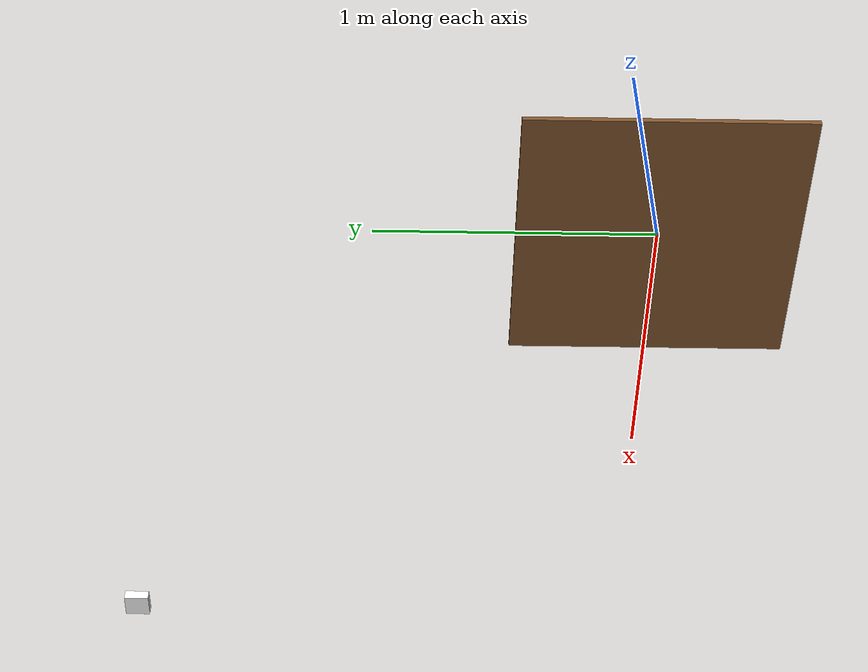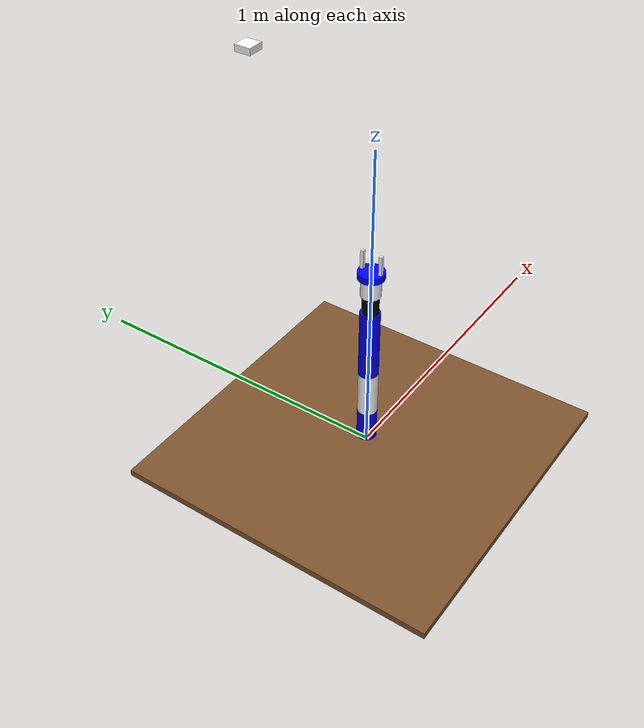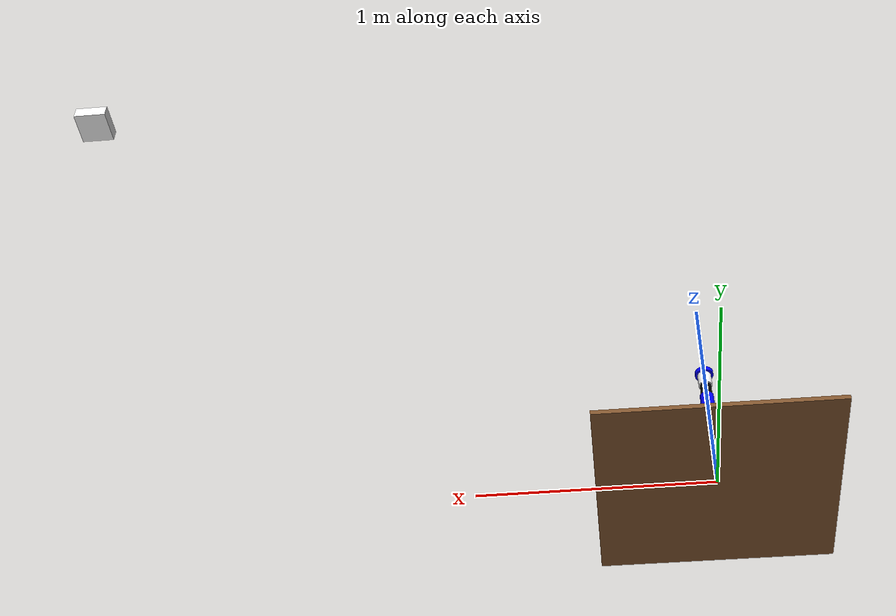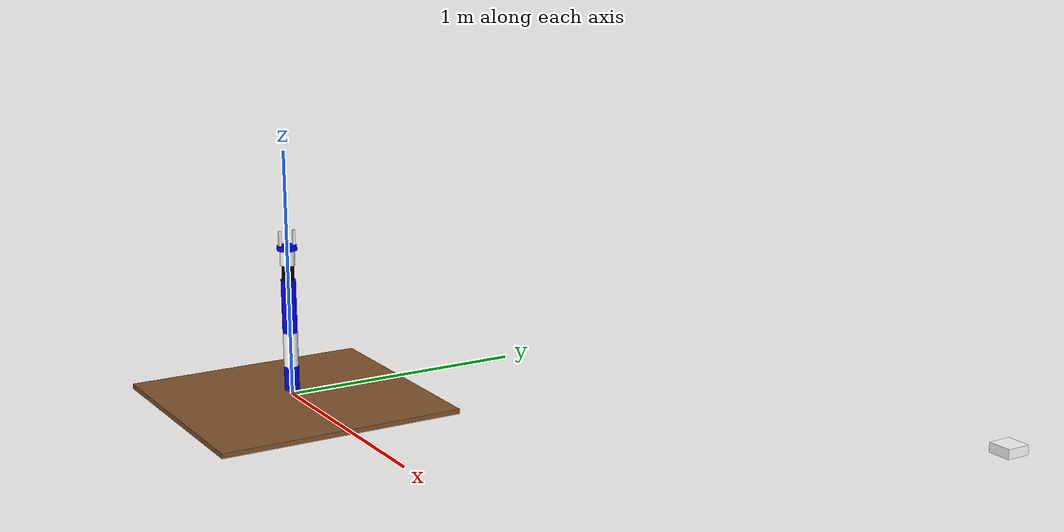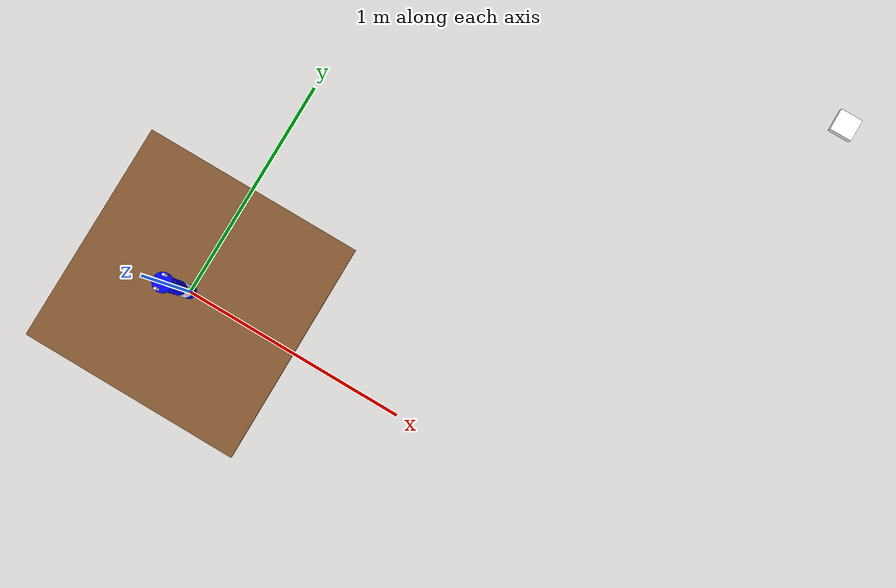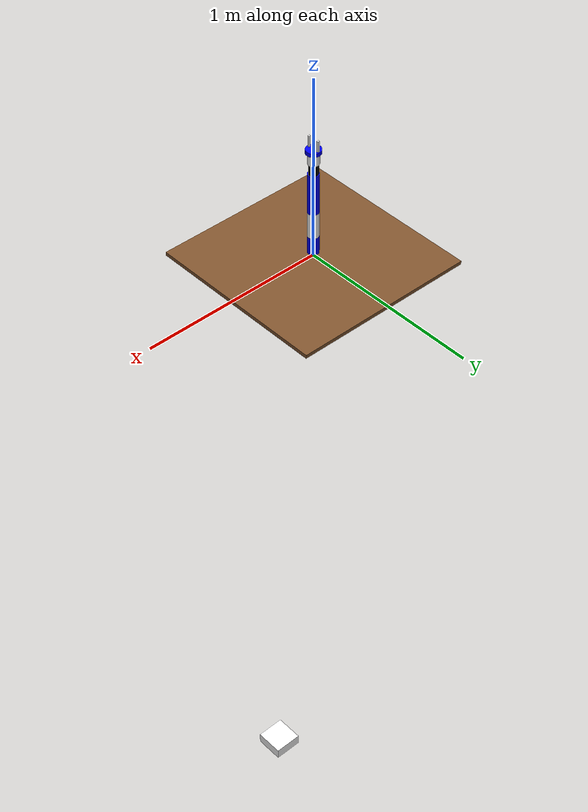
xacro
<?xml version="1.0"?>
<robot name="armb" xmlns:xacro="http://ros.org/wiki/xacro">

    <!-- Defining the colors used in this robot -->
    <material name="Black">
        <color rgba="0 0 0 1"/>
    </material>

    <material name="White">
        <color rgba="1 1 1 1"/>
    </material>

    <material name="Blue">
        <color rgba="0 0 1 1"/>
    </material>

    <material name="Red">
        <color rgba="1 0 0 1"/>
    </material>

    <!-- Constants -->
    <xacro:property name="M_PI" value="3.14159"/>

    <!-- link1 properties -->
    <xacro:property name="link1_width" value="0.03" />
    <xacro:property name="link1_len" value="0.10" />

    <!-- link2 properties -->
    <xacro:property name="link2_width" value="0.03" />
    <xacro:property name="link2_len" value="0.14" />

    <!-- link3 properties -->
    <xacro:property name="link3_width" value="0.03" />
    <xacro:property name="link3_len" value="0.22" />

    <!-- link4 properties -->
    <xacro:property name="link4_width" value="0.025" />
    <xacro:property name="link4_len" value="0.06" />

    <!-- link5 properties -->
    <xacro:property name="link5_width" value="0.03" />
    <xacro:property name="link5_len" value="0.06" />

    <!-- link6 properties -->
    <xacro:property name="link6_width" value="0.04" />
    <xacro:property name="link6_len" value="0.02" />

    <!-- Left gripper -->
    <xacro:property name="left_gripper_len" value="0.08" />
    <xacro:property name="left_gripper_width" value="0.01" />
    <xacro:property name="left_gripper_height" value="0.01" />

    <!-- Right gripper -->
    <xacro:property name="right_gripper_len" value="0.08" />
    <xacro:property name="right_gripper_width" value="0.01" />
    <xacro:property name="right_gripper_height" value="0.01" />

    <!-- Gripper frame -->
    <xacro:property name="grasp_frame_radius" value="0.001" />

    <!-- Inertial matrix -->
    <xacro:macro name="inertial_matrix" params="mass">
        <inertial>
            <mass value="${mass}" />
            <inertia ixx="1.0" ixy="0.0" ixz="0.0" iyy="0.5" iyz="0.0" izz="1.0" />
        </inertial>
    </xacro:macro>

    <!-- ///////////////////////////////////////   bottom_joint   ////////////////////////////////////////// -->
    <joint name="bottom_jointb" type="fixed">
        <origin xyz="0 0 0" rpy="0 0 0" />
        <parent link="base_linkb"/>
        <child link="bottom_linkb"/>
    </joint>
    <link name="bottom_linkb">
        <visual>
              <origin xyz=" 0 0 -0.02"  rpy="0 0 0"/>
                  <geometry>
                       <box size="1 1 0.02" />
                  </geometry>
              <material name="Brown" />
        </visual>
        <collision>
            <origin xyz=" 0 0 -0.02"  rpy="0 0 0"/>
            <geometry>
                <box size="1 1 0.02" />
            </geometry>
        </collision>
        <xacro:inertial_matrix mass="500"/>
    </link>

    <!-- /////////////////////////////////////   BASE LINK    ////////////////////////////////////////////// -->
    <link name="base_linkb">
        <visual>
            <origin xyz="2 2 0" rpy="0 0 0" />
            <geometry>
                <box size="0.1 0.1 0.04" />
            </geometry>
            <material name="White" />
        </visual>
        <collision>
            <origin xyz="0 0 0" rpy="0 0 0" />
            <geometry>
                <box size="0.1 0.1 0.04" />
            </geometry>
        </collision>
        <xacro:inertial_matrix mass="1"/>
    </link>

    <joint name="joint1b" type="revolute">
        <parent link="base_linkb"/>
        <child link="link1b"/>
        <origin xyz="0 0 0.02" rpy="0 ${M_PI/2} 0" />
        <axis xyz="-1 0 0" />
        <limit effort="300" velocity="1" lower="-2.96" upper="2.96"/>
        <dynamics damping="50" friction="1"/>
    </joint>

    <!-- /////////////////////////////////////   LINK1  ////////////////////////////////////////////// -->
    <link name="link1b" >
        <visual>
            <origin xyz="-${link1_len/2} 0 0" rpy="0 ${M_PI/2} 0" />
            <geometry>
                <cylinder radius="${link1_width}" length="${link1_len}"/>
            </geometry>
            <material name="Blue" />
        </visual>
        <collision>
            <origin xyz="-${link1_len/2} 0 0" rpy="0 ${M_PI/2} 0" />
            <geometry>
                <cylinder radius="${link1_width}" length="${link1_len}"/>
            </geometry>
        </collision>
        <xacro:inertial_matrix mass="1"/>
    </link>

    <joint name="joint2b" type="revolute">
        <parent link="link1b"/>
        <child link="link2b"/>
        <origin xyz="-${link1_len} 0 0.0" rpy="-${M_PI/2} 0 ${M_PI/2}" />
        <axis xyz="1 0 0" />
        <limit effort="300" velocity="1" lower="-2.35" upper="2.35" />
        <dynamics damping="50" friction="1"/>
    </joint>

    <!-- ///////////////////////////////////////   LINK2  ////////////////////////////////////////////// -->
    <link name="link2b" >
        <visual>
            <origin xyz="0 0 ${link2_len/2}" rpy="0 0 0" />
            <geometry>
                <cylinder radius="${link2_width}" length="${link2_len}"/>
            </geometry>
            <material name="White" />
        </visual>

        <collision>
            <origin xyz="0 0 ${link2_len/2}" rpy="0 0 0" />
            <geometry>
                <cylinder radius="${link2_width}" length="${link2_len}"/>
            </geometry>
        </collision>
        <xacro:inertial_matrix mass="1"/>
    </link>

    <joint name="joint3b" type="revolute">
        <parent link="link2b"/>
        <child link="link3b"/>
        <origin xyz="0 0 ${link2_len}" rpy="0 ${M_PI} 0" />
        <axis xyz="-1 0 0" />
        <limit effort="300" velocity="1" lower="-2.62" upper="2.62" />
        <dynamics damping="50" friction="1"/>
    </joint>

    <!-- /////////////////////////////////   LINK3  ///////////////////////////////////////////////////// -->
    <link name="link3b" >
        <visual>
            <origin xyz="0 0 -${link3_len/2}" rpy="0 0 0" />
            <geometry>
                <cylinder radius="${link3_width}" length="${link3_len}"/>
            </geometry>
            <material name="Blue" />
        </visual>
        <collision>
            <origin xyz="0 0 -${link3_len/2}" rpy="0 0 0" />
            <geometry>
                <cylinder radius="${link3_width}" length="${link3_len}"/>
            </geometry>
        </collision>
        <xacro:inertial_matrix mass="1"/>
    </link>

    <joint name="joint4b" type="revolute">
        <parent link="link3b"/>
        <child link="link4b"/>
        <origin xyz="0.0 0.0 -${link3_len}" rpy="0 ${M_PI/2} ${M_PI}" />
        <axis xyz="1 0 0" />
        <limit effort="300" velocity="1" lower="-2.62" upper="2.62" />
        <dynamics damping="50" friction="1"/>
    </joint>

    <!-- ///////////////////////////////////   LINK4  //////////////////////////////////////////////// -->
    <link name="link4b" >
        <visual>
            <origin xyz="${link4_len/2} 0 0" rpy="0 ${M_PI/2} 0" />
            <geometry>
                <cylinder radius="${link4_width}" length="${link4_len}"/>
            </geometry>
            <material name="Black" />
        </visual>
        <collision>
            <origin xyz="${link4_len/2} 0 0" rpy="0 ${M_PI/2} 0" />
            <geometry>
                <cylinder radius="${link4_width}" length="${link4_len}"/>
            </geometry>
        </collision>
        <xacro:inertial_matrix mass="1"/>
    </link>

    <joint name="joint5b" type="revolute">
        <parent link="link4b"/>
        <child link="link5b"/>
        <origin xyz="${link4_len} 0.0 0.0" rpy="0 ${M_PI/2} 0" />
        <axis xyz="1 0 0" />
        <limit effort="300" velocity="1" lower="-2.62" upper="2.62" />
        <dynamics damping="50" friction="1"/>
    </joint>

    <!-- //////////////////////////////////   LINK5  ///////////////////////////////////////////////// -->
    <link name="link5b">
        <visual>
            <origin xyz="0 0 ${link4_len/2}" rpy="0 0 0" />
            <geometry>
                <cylinder radius="${link5_width}" length="${link5_len}"/>
            </geometry>
            <material name="White" />
        </visual>
        <collision>
            <origin xyz="0 0 ${link4_len/2} " rpy="0 0 0" />
            <geometry>
                <cylinder radius="${link5_width}" length="${link5_len}"/>
            </geometry>
        </collision>
        <xacro:inertial_matrix mass="1"/>
    </link>

    <joint name="joint6b" type="revolute">
        <parent link="link5b"/>
        <child link="link6b"/>
        <origin xyz="0 0 ${link4_len}" rpy="${1.5*M_PI} -${M_PI/2} 0" />
        <axis xyz="1 0 0" />
        <limit effort="300" velocity="1" lower="-6.28" upper="6.28" />
        <dynamics damping="50" friction="1"/>
    </joint>

    <!-- ////////////////////////////////   LINK6  ///////////////////////////////////////////////// -->
    <link name="link6b">
        <visual>
            <origin xyz="${link6_len/2} 0 0 " rpy="0 ${M_PI/2} 0" />
            <geometry>
                <cylinder radius="${link6_width}" length="${link6_len}"/>
            </geometry>
            <material name="Blue" />
        </visual>
        <collision>
            <origin xyz="${link6_len/2} 0 0" rpy="0 ${M_PI/2} 0" />
            <geometry>
                <cylinder radius="${link6_width}" length="${link6_len}"/>
            </geometry>
        </collision>
        <xacro:inertial_matrix mass="1"/>
    </link>

    <joint name="finger_joint1b" type="prismatic">
        <parent link="link6b"/>
        <child link="gripper_finger_link1b"/>
        <origin xyz="0.0 0 0" />
        <axis xyz="0 1 0" />
        <limit effort="100" lower="0" upper="0.06" velocity="1.0"/>
        <dynamics damping="50" friction="1"/>
    </joint>

    <!-- //////////////////////////////////////   gripper   ////////////////////////////////////////////// -->
    <!-- LEFT GRIPPER AFT LINK -->
    <link name="gripper_finger_link1b">
        <visual>
            <origin xyz="0.04 -0.03 0"/>
            <geometry>
                <box size="${left_gripper_len} ${left_gripper_width} ${left_gripper_height}" />
            </geometry>
            <material name="White" />
        </visual>
        <xacro:inertial_matrix mass="1"/>
    </link>

    <joint name="finger_joint2b" type="fixed">
        <parent link="link6b"/>
        <child link="gripper_finger_link2b"/>
        <origin xyz="0.0 0 0" />
    </joint>

    <!-- RIGHT GRIPPER AFT LINK -->
    <link name="gripper_finger_link2b">
        <visual>
            <origin xyz="0.04 0.03 0"/>
            <geometry>
                <box size="${right_gripper_len} ${right_gripper_width} ${right_gripper_height}" />
            </geometry>
            <material name="White" />
        </visual>
        <xacro:inertial_matrix mass="1"/>
    </link>

    <!-- Grasping frame -->
    <link name="grasping_frameb"/>

    <joint name="grasping_frame_jointb" type="fixed">
      <parent link="link6b"/>
      <child link="grasping_frameb"/>
      <origin xyz="0.08 0 0" rpy="0 0 0"/>
    </joint>

    <!-- /////////////////////////////////   Gazebo   ////////////////////////////////////// -->
    <gazebo reference="bottom_linkb">
        <material>Gazebo/White</material>
    </gazebo>
    <gazebo reference="base_linkb">
        <material>Gazebo/White</material>
    </gazebo>
    <gazebo reference="link1b">
        <material>Gazebo/Blue</material>
    </gazebo>
    <gazebo reference="link2b">
        <material>Gazebo/White</material>
    </gazebo>
    <gazebo reference="link3b">
        <material>Gazebo/Blue</material>
    </gazebo>
    <gazebo reference="link4b">
        <material>Gazebo/Black</material>
    </gazebo>
    <gazebo reference="link5b">
        <material>Gazebo/White</material>
    </gazebo>
    <gazebo reference="link6b">
        <material>Gazebo/Blue</material>
    </gazebo>
    <gazebo reference="gripper_finger_link1b">
        <material>Gazebo/White</material>
    </gazebo>
    <gazebo reference="gripper_finger_link2b">
        <material>Gazebo/White</material>
    </gazebo>

    <!-- Transmissions for ROS Control -->
    <xacro:macro name="transmission_block" params="joint_name">
        <transmission name="tran1">
            <type>transmission_interface/SimpleTransmission</type>
            <joint name="${joint_name}">
                <hardwareInterface>hardware_interface/PositionJointInterface</hardwareInterface>
            </joint>
            <actuator name="motor1">
                <hardwareInterface>hardware_interface/PositionJointInterface</hardwareInterface>
                <mechanicalReduction>1</mechanicalReduction>
            </actuator>
        </transmission>
    </xacro:macro>

    <xacro:transmission_block joint_name="joint1b"/>
    <xacro:transmission_block joint_name="joint2b"/>
    <xacro:transmission_block joint_name="joint3b"/>
    <xacro:transmission_block joint_name="joint4b"/>
    <xacro:transmission_block joint_name="joint5b"/>
    <xacro:transmission_block joint_name="joint6b"/>
    <xacro:transmission_block joint_name="finger_joint1b"/>

    <!-- ros_control plugin -->
    <gazebo>
        <plugin name="gazebo_ros_control" filename="libgazebo_ros_control.so">
            <robotNamespace>/arm</robotNamespace>
        </plugin>
    </gazebo>

</robot>
